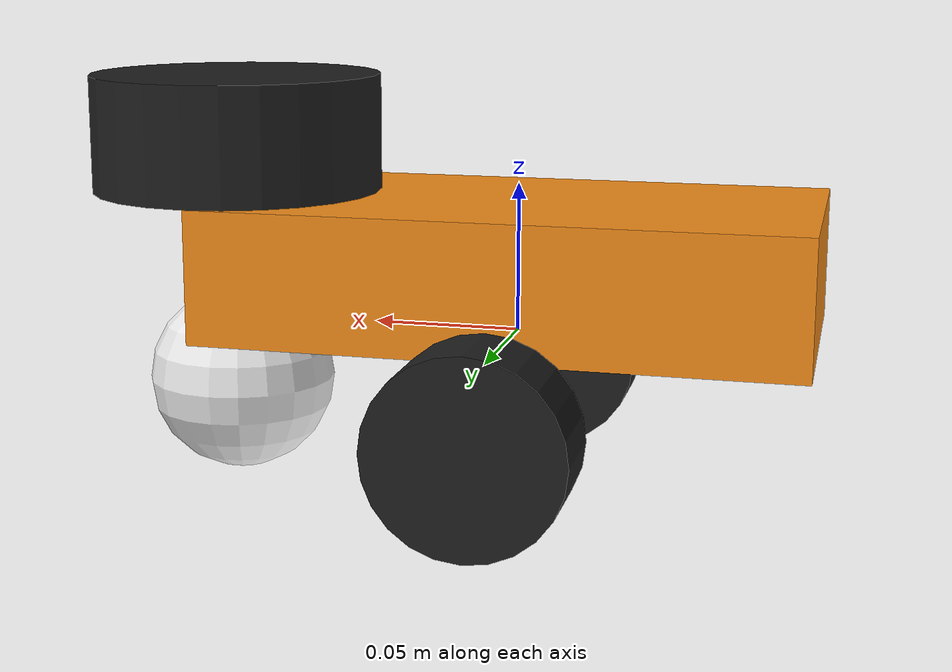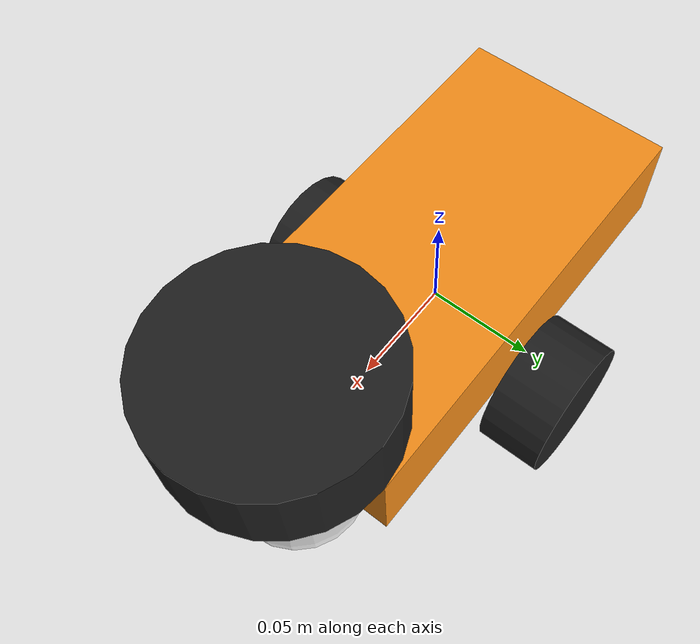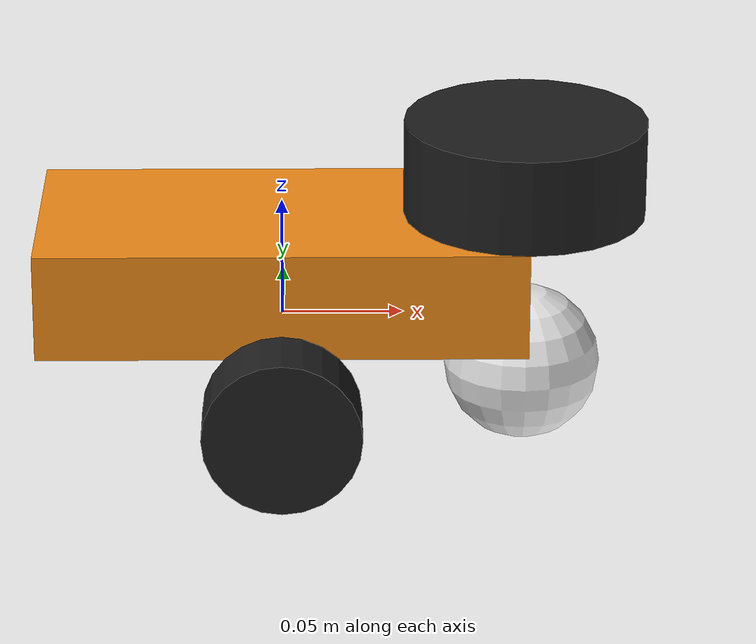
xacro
<?xml version="1.0"?>
<robot xmlns:xacro="http://www.ros.org/wiki/xacro" name="diffdrive_robot">
    <xacro:arg name="prefix" default="" />

    <!-- Import Robot Geometry - same as real hardware -->
    <xacro:include filename="$(find diffdrive_esp32)/urdf/diffbot_description.urdf.xacro" />

    <!-- Import Colors - same as real hardware -->
    <xacro:include filename="$(find diffdrive_esp32)/urdf/diffbot.materials.xacro" />

    <!-- Import Simulation-Specific ros2_control configuration -->
    <xacro:include filename="$(find diffdrive_esp32)/ros2_control/diffbot.ros2_control.sim.xacro" />

    <!-- Import Gazebo plugins - loads .so file and LIDAR Sensor -->
    <xacro:include filename="$(find diffdrive_esp32)/urdf/diffbot_sensors_and_control.gazebo.xacro" />

    <!-- Instantiate the diffbot macro -->
    <xacro:diffbot prefix="$(arg prefix)" />

</robot>

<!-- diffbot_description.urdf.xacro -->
<robot xmlns:xacro="http://www.ros.org/wiki/xacro">

  <!-- Diffbot Macro -->
  <xacro:macro name="diffbot" params="prefix">

  <!-- Constants for robot dimensions -->
  <xacro:property name="PI" value="3.1415926535897931"/>
  <xacro:property name="base_mass" value="1" /> <!-- arbitrary value for base mass -->
  <xacro:property name="base_length" value="0.2" />
  <xacro:property name="base_width" value="0.10" />
  <xacro:property name="base_height" value="0.0447" />
  <xacro:property name="wheel_mass" value="0.2" /> <!-- arbitrary value for wheel mass -->
  <xacro:property name="wheel_len" value="0.03" />
  <xacro:property name="wheel_radius" value="0.0325" />
  <xacro:property name="caster_wheel_mass" value="0.1" /> <!-- arbitrary value for caster wheel mass -->
  <xacro:property name="caster_wheel_radius" value="0.0325" />
  <xacro:property name="z_offset" value="-${base_height/2}" /> <!-- Space btw top of beam and the each joint -->

  <!-- Base Link -->
  <link name="${prefix}base_link">
    <collision>
      <origin xyz="0 0 ${base_height/2}" rpy="0 0 0"/>
      <geometry>
        <box size="${base_length} ${base_width} ${base_height}"/>
      </geometry>
    </collision>

    <visual>
      <origin xyz="0 0 ${base_height/2}" rpy="0 0 0"/>
      <geometry>
        <box size="${base_length} ${base_width} ${base_height}"/>
      </geometry>
      <material name="orange"/>
    </visual>

    <inertial>
      <origin xyz="0 0 ${base_height/2}" rpy="0 0 0"/>
      <mass value="${base_mass}"/>
      <inertia
        ixx="${base_mass / 12.0 * (base_width*base_width + base_height*base_height)}" ixy="0.0" ixz="0.0"
        iyy="${base_mass / 12.0 * (base_height*base_height + base_length*base_length)}" iyz="0.0"
        izz="${base_mass / 12.0 * (base_length*base_length + base_width*base_width)}"/>
    </inertial>
  </link>

  <!-- Left Wheel Joint -->
  <joint name="${prefix}left_wheel_joint" type="continuous">
    <parent link="${prefix}base_link"/>
    <child link="${prefix}left_wheel"/>
    <origin xyz="0 -${base_width/2 + wheel_len/2.0} ${z_offset}" rpy="0 0 0"/>
    <axis xyz="0 1 0"/>
    <dynamics damping="0.2"/>
  </joint>

  <!-- left wheel Link -->
  <link name="${prefix}left_wheel">
    <collision>
      <origin xyz="0 0 0" rpy="${PI/2} 0 0"/>
      <geometry>
        <cylinder length="${wheel_len}" radius="${wheel_radius}"/>
      </geometry>
    </collision>

    <visual>
      <origin xyz="0 0 0" rpy="${PI/2} 0 0"/>
      <geometry>
        <cylinder length="${wheel_len}" radius="${wheel_radius}"/>
      </geometry>
      <material name="black"/>
    </visual>

    <inertial>
      <origin xyz="0 0 0" rpy="0 0 0"/>
      <mass value="${wheel_mass}"/>
      <inertia
        ixx="${wheel_mass / 12.0 * (3*wheel_radius*wheel_radius + wheel_len*wheel_len)}" ixy="0.0" ixz="0.0"
        iyy="${wheel_mass / 2.0 * wheel_radius*wheel_radius}" iyz="0.0"
        izz="${wheel_mass / 12.0 * (3*wheel_radius*wheel_radius + wheel_len*wheel_len)}"/>
    </inertial>
  </link>

  <!-- Right Wheel Joint -->
  <joint name="${prefix}right_wheel_joint" type="continuous">
    <parent link="${prefix}base_link"/>
    <child link="${prefix}right_wheel"/>
    <origin xyz="0 ${base_width/2 + wheel_len/2.0} ${z_offset}" rpy="0 0 0"/>
    <axis xyz="0 1 0"/>
    <dynamics damping="0.2"/>
  </joint>

  <!-- right wheel Link -->
  <link name="${prefix}right_wheel">
    <collision>
      <origin xyz="0 0 0" rpy="${PI/2} 0 0"/>
      <geometry>
        <cylinder length="${wheel_len}" radius="${wheel_radius}"/>
      </geometry>
    </collision>

    <visual>
      <origin xyz="0 0 0" rpy="${PI/2} 0 0"/>
      <geometry>
        <cylinder length="${wheel_len}" radius="${wheel_radius}"/>
      </geometry>
      <material name="black"/>
    </visual>

    <inertial>
      <origin xyz="0 0 0" rpy="0 0 0"/>
      <mass value="${wheel_mass}"/>
      <inertia
        ixx="${wheel_mass / 12.0 * (3*wheel_radius*wheel_radius + wheel_len*wheel_len)}" ixy="0.0" ixz="0.0"
        iyy="${wheel_mass / 2.0 * wheel_radius*wheel_radius}" iyz="0.0"
        izz="${wheel_mass / 12.0 * (3*wheel_radius*wheel_radius + wheel_len*wheel_len)}"/>
    </inertial>
  </link>

  <!-- Caster Frontal Wheel Joint -->
  <joint name="${prefix}caster_frontal_wheel_joint" type="fixed">
    <parent link="${prefix}base_link"/>
    <child link="${prefix}caster_frontal_wheel"/>
    <origin xyz="${base_length/2} 0 ${z_offset}" rpy="0 0 0"/>
  </joint>

  <!-- caster frontal wheel Link -->
  <link name="${prefix}caster_frontal_wheel">
    <collision>
      <origin xyz="0 0 0" rpy="0 0 0"/>
      <geometry>
        <sphere radius="${caster_wheel_radius}"/>
      </geometry>
    </collision>

    <visual>
      <origin xyz="0 0 0" rpy="0 0 0"/>
      <geometry>
        <sphere radius="${caster_wheel_radius}"/>
      </geometry>
      <material name="white"/>
    </visual>

    <inertial>
      <origin xyz="0 0 0" rpy="0 0 0"/>
      <mass value="${caster_wheel_mass}"/>
      <inertia
        ixx="${caster_wheel_mass * 0.4 * (caster_wheel_radius * caster_wheel_radius)}" ixy="0.0" ixz="0.0"
        iyy="${caster_wheel_mass * 0.4 * (caster_wheel_radius * caster_wheel_radius)}" iyz="0.0"
        izz="${caster_wheel_mass * 0.4 * (caster_wheel_radius * caster_wheel_radius)}"/>
    </inertial>
  </link>

  <!-- Laser Joint -->
  <joint name="${prefix}laser_joint" type="fixed">
    <parent link="${prefix}base_link"/>
    <child link="${prefix}laser_frame"/>
    <origin xyz="0.1 0 ${base_height + 0.02}" rpy="0 0 0"/>
  </joint>

  <link name="${prefix}laser_frame">
    <visual>
      <geometry>
        <cylinder radius="0.05" length="0.04"/>
      </geometry>
      <material name="black"/>
    </visual>
    <collision>
      <geometry>
        <cylinder radius="0.05" length="0.04"/>
      </geometry>
    </collision>
    <inertial>
      <mass value="0.1"/>
      <inertia
        ixx="0.000041" ixy="0.0" ixz="0.0"
        iyy="0.000041" iyz="0.0"
        izz="0.000125"/>
    </inertial>

  </link>

  </xacro:macro>

</robot>
